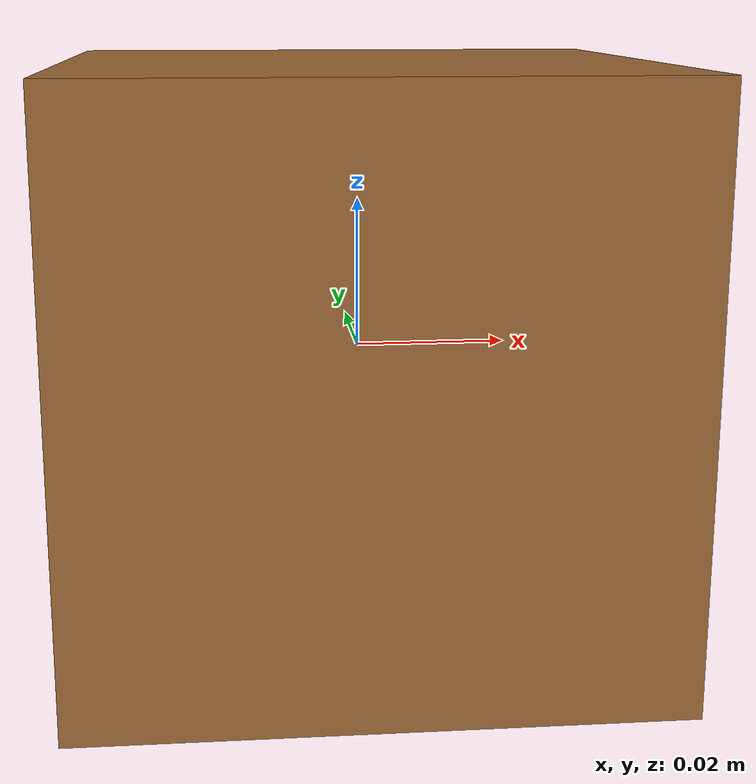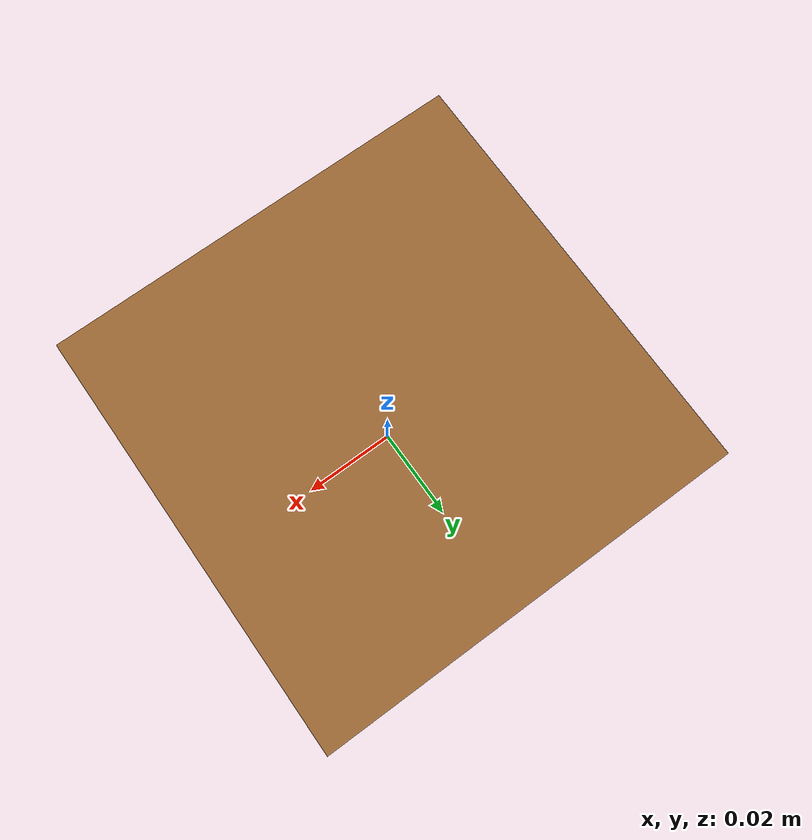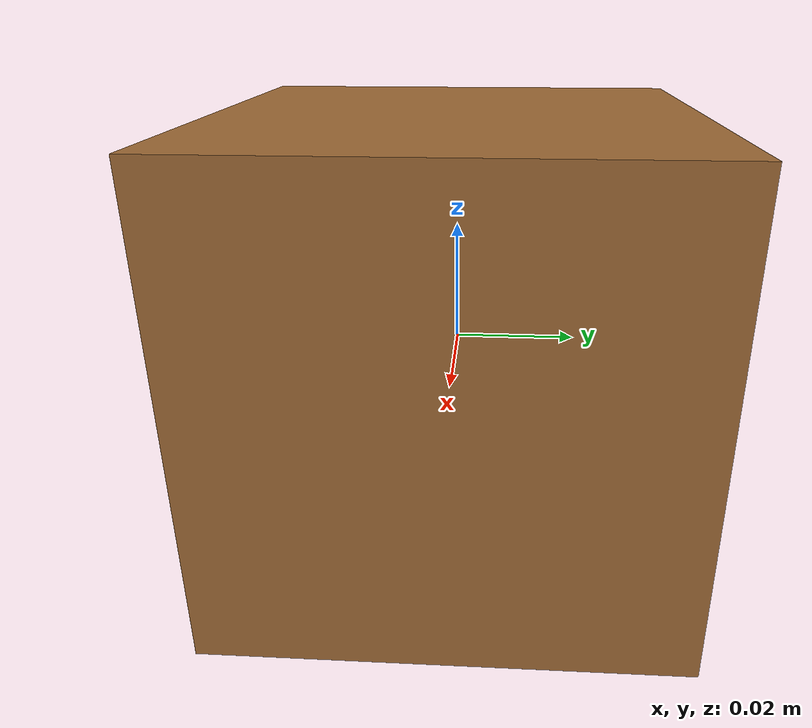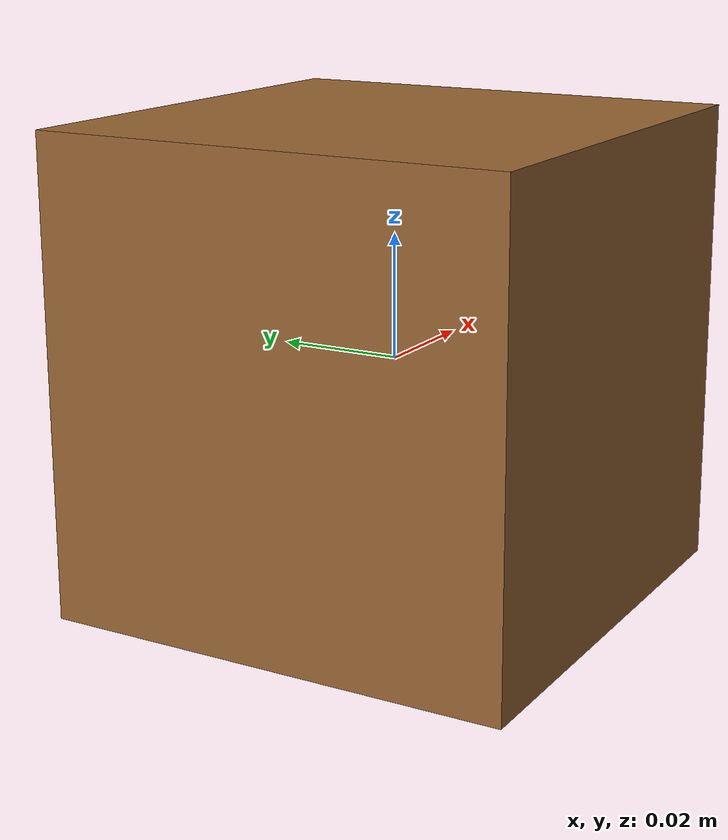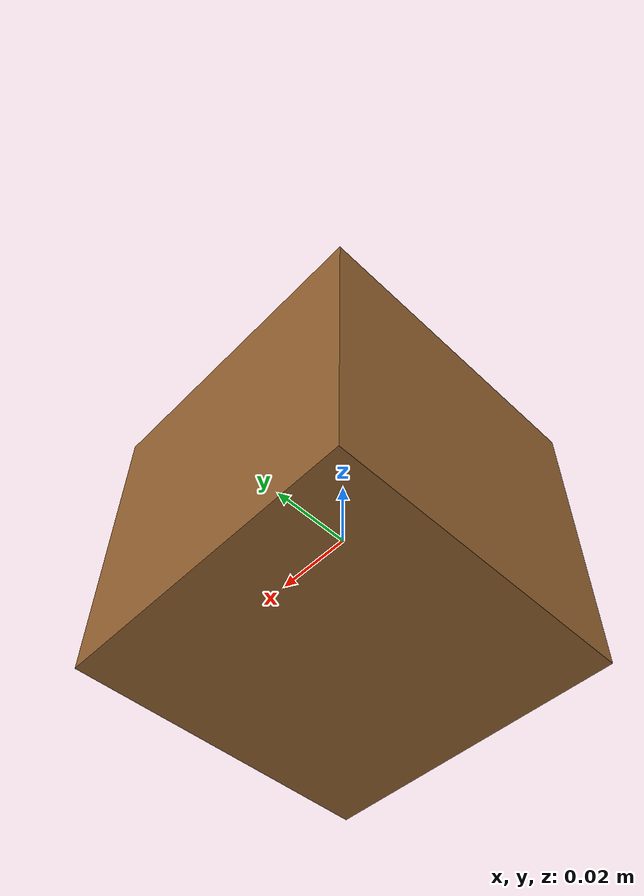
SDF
<?xml version="1.0" ?>
<sdf version="1.5">
  <model name="wood_cube">
    <link name="link">
      <inertial>
        <mass>0.100</mass>
        <!-- box: 0.076x0.076x0.076m — Ixx=Iyy=Izz=m/12*(a²+a²) -->
        <inertia>
          <ixx>0.0000963</ixx><ixy>0</ixy><ixz>0</ixz>
          <iyy>0.0000963</iyy><iyz>0</iyz><izz>0.0000963</izz>
        </inertia>
      </inertial>
      <collision name="collision">
        <geometry><box><size>0.076 0.076 0.076</size></box></geometry>
              <surface>
          <friction>
            <ode>
              <mu>0.5</mu>
              <mu2>0.5</mu2>
            </ode>
            <torsional>
              <coefficient>0.5</coefficient>
              <surface_radius>0.01</surface_radius>
            </torsional>
          </friction>
          <contact>
            <ode>
              <kp>1e6</kp>
              <kd>50</kd>
              <min_depth>0.001</min_depth>
              <max_vel>0.01</max_vel>
            </ode>
          </contact>
        </surface>
      </collision>
      <visual name="visual">
        <geometry><box><size>0.076 0.076 0.076</size></box></geometry>
        <material>
          <ambient>0.6 0.4 0.2 1</ambient><diffuse>0.6 0.4 0.2 1</diffuse>
        </material>
      </visual>
    </link>
  </model>
</sdf>
